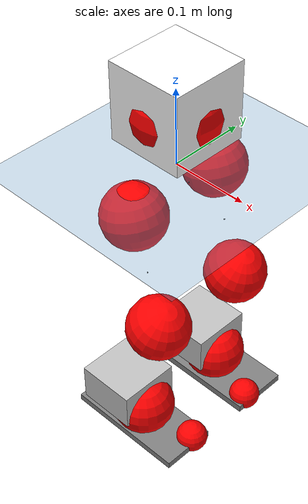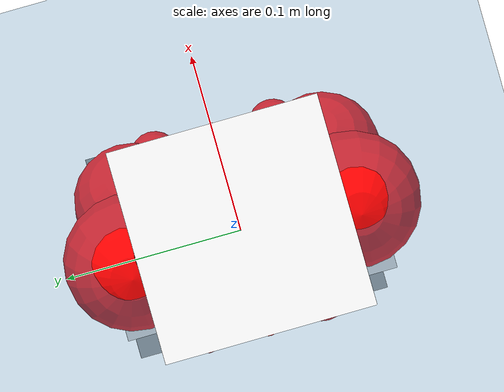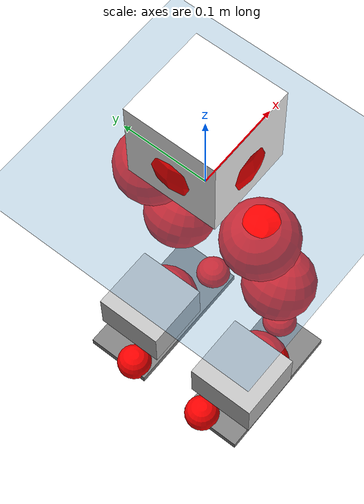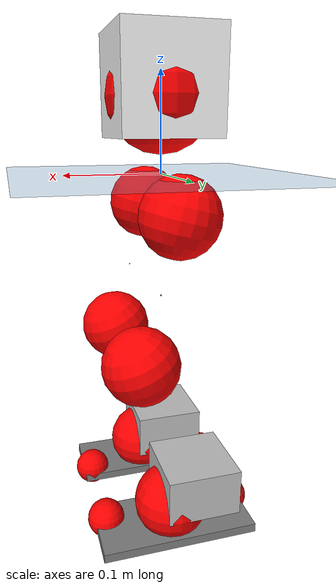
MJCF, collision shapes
<mujoco model="pi_12dof_release_v1">
  <compiler angle="radian" assetdir="assets" balanceinertia="true" inertiafromgeom="false"/>

  <option timestep="0.005" density="1.2" viscosity="2e-05"/>

  <size nkey="1"/>

  <visual>
    <quality shadowsize="8192"/>
    <map shadowclip="0.5"/>
  </visual>

  <default>
    <default class="/">
      <joint armature="0.01" damping="0.01" frictionloss="0.01"/>
      <geom contype="0" conaffinity="0" group="1" solref="-1000 -80"/>
      <site size="0.01 0.005 0.005" group="5"/>
      <general forcelimited="true" biastype="affine" gainprm="20" biasprm="0 -20 -0.5"/>
      <default class="foot">
        <geom size="0.0845 0.036 0.005" type="box" condim="6" group="4" priority="1" friction="0.9 0.2 0.2" solimp="0.015 1 0.005"/>
      </default>
      <default class="reward_collision_sphere">
        <geom group="5" rgba="1 0 0 1"/>
      </default>
    </default>
  </default>

  <asset>
    <texture type="skybox" colorspace="auto" name="//unnamed_texture_0" builtin="gradient" rgb1="0.95 0.95 0.95" rgb2="0.95 0.95 0.95" width="100" height="600"/>
    <texture type="2d" colorspace="auto" name="texplane" builtin="checker" rgb1="0.345 0.575 0.748" rgb2="0.345 0.575 0.748" markrgb="1 1 1" width="512" height="512"/>
    <material name="MatPlane" class="/" texture="texplane" texuniform="true" texrepeat="2 2" specular="0.9"/>
    <mesh name="baselink_1" class="/" file="baselink_1.STL"/>
    <mesh name="r_hip_pitch_link" class="/" file="r_hip_pitch_link.STL"/>
    <mesh name="r_hip_roll_link" class="/" file="r_hip_roll_link.STL"/>
    <mesh name="r_thigh_link" class="/" file="r_thigh_link.STL"/>
    <mesh name="r_calf_link" class="/" file="r_calf_link.STL"/>
    <mesh name="r_ankle_pitch_link" class="/" file="r_ankle_pitch_link.STL"/>
    <mesh name="r_ankle_roll_link" class="/" file="r_ankle_roll_link.STL"/>
    <mesh name="l_hip_pitch_link" class="/" file="l_hip_pitch_link.STL"/>
    <mesh name="l_hip_roll_link" class="/" file="l_hip_roll_link.STL"/>
    <mesh name="l_thigh_link" class="/" file="l_thigh_link.STL"/>
    <mesh name="l_calf_link" class="/" file="l_calf_link.STL"/>
    <mesh name="l_ankle_pitch_link" class="/" file="l_ankle_pitch_link.STL"/>
    <mesh name="l_ankle_roll_link" class="/" file="l_ankle_roll_link.STL"/>
  </asset>

  <worldbody>
    <geom name="floor" class="/" size="100 100 0.125" type="plane" group="0" material="MatPlane"/>
    <light name="toplight_shadow" class="/" pos="0 0 5" dir="0.0990148 0.0990148 -0.990148" type="directional" ambient="0.04 0.04 0.04" diffuse="0.55 0.55 0.55" specular="0.12 0.12 0.12"/>
    <light name="toplight_fill" class="/" pos="0 0 5" dir="0.0990148 0.0990148 -0.990148" type="directional" castshadow="false" ambient="0.04 0.04 0.04" diffuse="0.3 0.3 0.3" specular="0.08 0.08 0.08"/>
    <body name="trunk" pos="0.000401999 -1.9904e-05 -0.00222365" quat="1 0.000375575 0.000773671 0.000464825">
      <inertial pos="0.00223416 0.000181533 0.0442854" quat="0.699634 0.010683 0.0161709 0.714238" mass="2.27574" diaginertia="0.0151869 0.00400272 0.0069167"/>
      <joint name="//unnamed_joint_0" type="free"/>
      <geom name="//unnamed_geom_1" class="/" type="mesh" density="0" rgba="1 1 1 1" mesh="baselink_1"/>
      <geom name="//unnamed_geom_2" class="/" size="0.0505302 0.0505302 0.0505302" pos="0 0 0.0880144" type="box" rgba="1 1 1 1"/>
      <geom name="//unnamed_geom_3" class="reward_collision_sphere" size="0.0555832" pos="0 0 0.0770126"/>
      <site name="imu" class="/" pos="-0.000992949 -0.00120664 -0.00496638" size="0.010106"/>
      <camera name="track" class="/" pos="0 -1.68932 0" quat="0.707107 0.707107 0 0" mode="trackcom"/>
      <camera name="ego_camera" class="/" pos="0.0815226 0 0.198032" quat="-0.5 -0.5 0.5 0.5"/>
      <body name="r_hip_pitch_link" pos="0.000780936 -0.0199537 -0.0353771" quat="0.992202 -1.513e-05 -0.124639 -5.38876e-07">
        <inertial pos="-0.000407817 -0.047662 -0.00180709" quat="-0.0152862 0.700284 -0.0223679 0.71335" mass="0.384158" diaginertia="0.000166801 4.27907e-05 0.000134376"/>
        <joint name="r_hip_pitch_joint" class="/" pos="0 0 0" axis="0.00332833 -0.99999 -0.00297055" stiffness="0.00322132" range="-1.76039 1.2661" armature="0.0100795" damping="0.0176163" frictionloss="0.0101474"/>
        <geom name="//unnamed_geom_4" class="/" type="mesh" density="0" rgba="0.75294 0.75294 0.75294 1" mesh="r_hip_pitch_link"/>
        <geom name="//unnamed_geom_5" class="/" size="0.000505302 0.000505302 0.000505302" type="box" rgba="0.75294 0.75294 0.75294 1"/>
        <body name="r_hip_roll_link" pos="-0.00128288 -0.047171 0.00143018" quat="1 -0.000125812 -0.000100182 -9.98419e-05">
          <inertial pos="-0.00032769 -0.000127817 -0.0663269" quat="0.703938 -0.0755001 -0.0838131 0.701246" mass="0.390477" diaginertia="0.000495178 0.000117274 0.000200012"/>
          <joint name="r_hip_roll_joint" class="/" pos="0 0 0" axis="-0.999997 0.00127076 0.00228499" range="-0.118831 0.491551" armature="0.00891779" damping="0.00717976" frictionloss="0.0100529"/>
          <geom name="//unnamed_geom_6" class="/" type="mesh" density="0" rgba="0.75294 0.75294 0.75294 1" mesh="r_hip_roll_link"/>
          <geom name="//unnamed_geom_7" class="/" size="0.000505302 0.000505302 0.000505302" type="box" rgba="0.75294 0.75294 0.75294 1"/>
          <geom name="//unnamed_geom_8" class="reward_collision_sphere" size="0.0404241"/>
          <body name="r_thigh_link" pos="0.00107898 -0.000334928 -0.0760119" quat="1 -0.000160061 -9.8699e-05 -5.57563e-05">
            <inertial pos="-0.00199844 -0.00125746 -0.0518424" quat="0.737897 0.674914 -0.00011913 0.000662808" mass="0.115959" diaginertia="0.000185113 4.09598e-05 9.34195e-05"/>
            <joint name="r_thigh_joint" class="/" pos="0 0 0" axis="0.000260229 -0.000537233 -1" range="-0.288577 0.619485" armature="0.00903187" damping="0.00699722" frictionloss="0.0100969"/>
            <geom name="//unnamed_geom_9" class="/" type="mesh" density="0" rgba="0.75294 0.75294 0.75294 1" mesh="r_thigh_link"/>
            <geom name="//unnamed_geom_10" class="/" size="0.000505302 0.000505302 0.000505302" type="box" rgba="0.75294 0.75294 0.75294 1"/>
            <body name="r_calf_link" pos="-0.00111384 -0.00156476 -0.0779362" quat="0.947829 -0.000970766 0.318776 0.000370911">
              <inertial pos="0.000582578 -0.000787724 -0.0766914" quat="0.999934 0.00016681 0.0109243 0.00355463" mass="0.874036" diaginertia="0.00540283 0.00152764 0.00028574"/>
              <joint name="r_calf_joint" class="/" pos="0 0 0" axis="0.0049604 -0.999988 0.000202386" stiffness="0.00236764" range="-1.64897 0.638026" armature="0.0100687" damping="0.00763546" frictionloss="0.0103831"/>
              <geom name="//unnamed_geom_11" class="/" type="mesh" density="0" rgba="0.75294 0.75294 0.75294 1" mesh="r_calf_link"/>
              <geom name="//unnamed_geom_12" class="/" size="0.000505302 0.000505302 0.000505302" type="box" rgba="0.75294 0.75294 0.75294 1"/>
              <geom name="//unnamed_geom_13" class="reward_collision_sphere" size="0.0404241"/>
              <body name="r_ankle_pitch_link" pos="0.000979083 0.000929548 -0.152972" quat="0.980082 -4.95389e-05 -0.198592 0.000267475">
                <inertial pos="0.00597013 0.00301549 0.000823894" quat="-2.37263e-05 0.707768 -0.00572364 0.706422" mass="0.183929" diaginertia="0.000467957 9.40933e-05 0.000191229"/>
                <joint name="r_ankle_pitch_joint" class="/" pos="0 0 0" axis="0.000970716 -0.999999 0.001244" range="-1.28908 0.500515" armature="0.0106126" damping="0.0218978" frictionloss="0.0101689"/>
                <geom name="//unnamed_geom_14" class="/" type="mesh" density="0" rgba="0.75294 0.75294 0.75294 1" mesh="r_ankle_pitch_link"/>
                <geom name="//unnamed_geom_15" class="/" size="0.0394135 0.0404241 0.0252651" type="box" rgba="0.75294 0.75294 0.75294 1"/>
                <body name="r_ankle_roll_link" pos="0.081169 0.00096558 0.00012351" quat="1 7.10778e-05 0.000181746 -0.000106043">
                  <inertial pos="-0.024662 -0.00168611 -0.015081" quat="0.561039 0.42462 0.428165 0.567105" mass="0.522002" diaginertia="0.001668 0.000441697 0.000445524"/>
                  <joint name="r_ankle_roll_joint" class="/" pos="0 0 0" axis="-0.999996 0.00264755 0.00139445" range="-0.198084 0.147871" armature="0.00929535" damping="0.0105136" frictionloss="0.00909898"/>
                  <geom name="//unnamed_geom_16" class="/" type="mesh" density="0" rgba="0.75294 0.75294 0.75294 1" mesh="r_ankle_roll_link"/>
                  <geom name="//unnamed_geom_17" class="/" type="mesh" rgba="0.75294 0.75294 0.75294 1" mesh="r_ankle_roll_link"/>
                  <geom name="right_foot" class="foot" size="0.0824286 0.0361307 0.00453996" pos="-0.0554354 0 -0.0484079"/>
                  <geom name="//unnamed_geom_19" class="reward_collision_sphere" size="0.0404241" pos="-0.0543484 0 -0.0220036"/>
                  <geom name="//unnamed_geom_20" class="reward_collision_sphere" size="0.0202121" pos="0.0163045 0.0168932 -0.0440072"/>
                  <geom name="//unnamed_geom_21" class="reward_collision_sphere" size="0.0202121" pos="-0.130436 0.0168932 -0.0440072"/>
                  <site name="right_foot" class="foot" pos="-0.0554354 0 -0.0484079" size="0.010106"/>
                </body>
              </body>
            </body>
          </body>
        </body>
      </body>
      <body name="l_hip_pitch_link" pos="0.000647421 0.0192912 -0.0349046" quat="0.992184 0.000187472 -0.124784 0.000336454">
        <inertial pos="0.00196137 0.0434764 -0.00243306" quat="-0.0372052 0.702581 0.027549 0.710096" mass="0.400999" diaginertia="0.000197189 4.47799e-05 0.000161"/>
        <joint name="l_hip_pitch_joint" class="/" pos="0 0 0" axis="0.00867426 0.999961 0.00137424" range="-1.29032 1.76487" armature="0.0100867" damping="0" frictionloss="0.00983714"/>
        <geom name="//unnamed_geom_22" class="/" type="mesh" density="0" rgba="0.75294 0.75294 0.75294 1" mesh="l_hip_pitch_link"/>
        <geom name="//unnamed_geom_23" class="/" size="0.000505302 0.000505302 0.000505302" type="box" rgba="0.75294 0.75294 0.75294 1"/>
        <body name="l_hip_roll_link" pos="-0.000841159 0.0455701 0.00212001" quat="1 -2.01571e-05 0.000125706 -0.000270225">
          <inertial pos="0.000877424 -0.000856466 -0.0696713" quat="0.699345 -0.0752279 -0.0780578 0.706516" mass="0.411873" diaginertia="0.000533737 0.000123362 0.000214471"/>
          <joint name="l_hip_roll_joint" class="/" pos="0 0 0" axis="-0.999999 -0.00102321 -0.000913036" range="-0.498827 0.121099" armature="0.00978775" damping="0.00591462" frictionloss="0.0101281"/>
          <geom name="//unnamed_geom_24" class="/" type="mesh" density="0" rgba="0.75294 0.75294 0.75294 1" mesh="l_hip_roll_link"/>
          <geom name="//unnamed_geom_25" class="/" size="0.000505302 0.000505302 0.000505302" type="box" rgba="0.75294 0.75294 0.75294 1"/>
          <geom name="//unnamed_geom_26" class="reward_collision_sphere" size="0.0404241"/>
          <body name="l_thigh_link" pos="-0.00027284 -0.000637346 -0.0770769" quat="1 0.000443457 -4.53214e-06 0.000165863">
            <inertial pos="-0.00165103 -0.00154797 -0.0548066" quat="0.675269 0.737516 -0.00569373 -0.007009" mass="0.115926" diaginertia="0.000188488 4.07237e-05 9.16324e-05"/>
            <joint name="l_thigh_joint" class="/" pos="0 0 0" axis="2.61327e-05 3.27119e-05 -1" range="-0.603193 0.294031" armature="0.0103019" damping="0.0118815" frictionloss="0.0112705"/>
            <geom name="//unnamed_geom_27" class="/" type="mesh" density="0" rgba="0.75294 0.75294 0.75294 1" mesh="l_thigh_link"/>
            <geom name="//unnamed_geom_28" class="/" size="0.000505302 0.000505302 0.000505302" type="box" rgba="0.75294 0.75294 0.75294 1"/>
            <body name="l_calf_link" pos="0.00201945 0.00039563 -0.0755948" quat="0.947632 1.51586e-05 0.319363 -8.36164e-05">
              <inertial pos="-0.000495683 0.00266557 -0.0776403" quat="0.999899 0.00238382 -0.00204312 0.0138504" mass="0.837032" diaginertia="0.00563166 0.0015417 0.000287287"/>
              <joint name="l_calf_joint" class="/" pos="0 0 0" axis="0.000606942 1 0.000117292" range="-0.681313 1.6909" armature="0.00979208" damping="0.0060028" frictionloss="0.0101728"/>
              <geom name="//unnamed_geom_29" class="/" type="mesh" density="0" rgba="0.75294 0.75294 0.75294 1" mesh="l_calf_link"/>
              <geom name="//unnamed_geom_30" class="/" size="0.000505302 0.000505302 0.000505302" type="box" rgba="0.75294 0.75294 0.75294 1"/>
              <geom name="//unnamed_geom_31" class="reward_collision_sphere" size="0.0404241"/>
              <body name="l_ankle_pitch_link" pos="0.00188379 -0.000274963 -0.152992" quat="0.98005 3.88726e-05 -0.198749 9.41209e-05">
                <inertial pos="0.00455648 -0.000576711 -0.00206946" quat="-0.00276484 0.707803 0.0022752 0.706401" mass="0.178388" diaginertia="0.000481331 9.68505e-05 0.000194038"/>
                <joint name="l_ankle_pitch_joint" class="/" pos="0 0 0" axis="0.000537125 0.999995 -0.00299688" stiffness="0.0012271" range="-0.511834 1.31503" armature="0.0105864" damping="0" frictionloss="0.00957192"/>
                <geom name="//unnamed_geom_32" class="/" type="mesh" density="0" rgba="0.75294 0.75294 0.75294 1" mesh="l_ankle_pitch_link"/>
                <geom name="//unnamed_geom_33" class="/" size="0.0394135 0.0404241 0.0252651" type="box" rgba="0.75294 0.75294 0.75294 1"/>
                <body name="l_ankle_roll_link" pos="0.0799546 0.00145497 -0.00158353" quat="0.999999 0.000230456 -0.000465458 -0.00106835">
                  <inertial pos="-0.0269759 -0.000224063 -0.0155872" quat="0.560717 0.438058 0.432679 0.553616" mass="0.536169" diaginertia="0.00171307 0.000439841 0.000444715"/>
                  <joint name="l_ankle_roll_joint" class="/" pos="0 0 0" axis="-1 0.000428258 0.000606111" stiffness="2.0156e-05" range="-0.149359 0.104582" armature="0.0100671" damping="0.00353114" frictionloss="0.0104626"/>
                  <geom name="//unnamed_geom_34" class="/" type="mesh" density="0" rgba="0.75294 0.75294 0.75294 1" mesh="l_ankle_roll_link"/>
                  <geom name="//unnamed_geom_35" class="/" type="mesh" rgba="0.75294 0.75294 0.75294 1" mesh="l_ankle_roll_link"/>
                  <geom name="left_foot" class="foot" size="0.0840335 0.0388564 0.0048262" pos="-0.0554354 0 -0.0484079"/>
                  <geom name="//unnamed_geom_37" class="reward_collision_sphere" size="0.0404241" pos="-0.0543484 0 -0.0220036"/>
                  <geom name="//unnamed_geom_38" class="reward_collision_sphere" size="0.0202121" pos="0.0163045 -0.0168932 -0.0440072"/>
                  <geom name="//unnamed_geom_39" class="reward_collision_sphere" size="0.0202121" pos="-0.130436 -0.0168932 -0.0440072"/>
                  <site name="left_foot" class="foot" pos="-0.0554354 0 -0.0484079" size="0.010106"/>
                </body>
              </body>
            </body>
          </body>
        </body>
      </body>
    </body>
  </worldbody>

  <contact>
    <pair class="/" geom1="floor" geom2="right_foot" name="//unnamed_contact_1"/>
    <pair class="/" geom1="floor" geom2="left_foot" name="//unnamed_contact_0"/>
  </contact>

  <actuator>
    <general name="r_hip_pitch_joint" class="/" joint="r_hip_pitch_joint" forcerange="-22.4927 22.4927" gainprm="19.0685" biasprm="0 -19.0685 -0.486864"/>
    <general name="r_hip_roll_joint" class="/" joint="r_hip_roll_joint" forcerange="-19.3764 19.3764" gainprm="19.0685" biasprm="0 -19.0685 -0.486864"/>
    <general name="r_thigh_joint" class="/" joint="r_thigh_joint" forcerange="-21.302 21.302" gainprm="19.0685" biasprm="0 -19.0685 -0.486864"/>
    <general name="r_calf_joint" class="/" joint="r_calf_joint" forcerange="-23.1132 23.1132" gainprm="19.0685" biasprm="0 -19.0685 -0.486864"/>
    <general name="r_ankle_pitch_joint" class="/" joint="r_ankle_pitch_joint" forcerange="-21.9102 21.9102" gainprm="19.0685" biasprm="0 -19.0685 -0.486864"/>
    <general name="r_ankle_roll_joint" class="/" joint="r_ankle_roll_joint" forcerange="-19.3505 19.3505" gainprm="19.0685" biasprm="0 -19.0685 -0.486864"/>
    <general name="l_hip_pitch_joint" class="/" joint="l_hip_pitch_joint" forcerange="-21.4355 21.4355" gainprm="19.0685" biasprm="0 -19.0685 -0.486864"/>
    <general name="l_hip_roll_joint" class="/" joint="l_hip_roll_joint" forcerange="-21.1547 21.1547" gainprm="19.0685" biasprm="0 -19.0685 -0.486864"/>
    <general name="l_thigh_joint" class="/" joint="l_thigh_joint" forcerange="-20.9514 20.9514" gainprm="19.0685" biasprm="0 -19.0685 -0.486864"/>
    <general name="l_calf_joint" class="/" joint="l_calf_joint" forcerange="-21.1329 21.1329" gainprm="19.0685" biasprm="0 -19.0685 -0.486864"/>
    <general name="l_ankle_pitch_joint" class="/" joint="l_ankle_pitch_joint" forcerange="-20.8236 20.8236" gainprm="19.0685" biasprm="0 -19.0685 -0.486864"/>
    <general name="l_ankle_roll_joint" class="/" joint="l_ankle_roll_joint" forcerange="-21.461 21.461" gainprm="19.0685" biasprm="0 -19.0685 -0.486864"/>
  </actuator>

  <sensor>
    <gyro site="imu" name="imu_angular_velocity"/>
    <velocimeter site="imu" name="imu_linear_velocity"/>
    <framelinvel objtype="site" objname="left_foot" name="left_foot_global_linear_velocity"/>
    <framelinvel objtype="site" objname="right_foot" name="right_foot_global_linear_velocity"/>
  </sensor>

  <keyframe>
    <key name="home" qpos="0 0 0.291 1 0 0 0 0.4 0 0 -0.8 0.4 0 -0.4 0 0 0.8 -0.4 0"/>
  </keyframe>
</mujoco>
